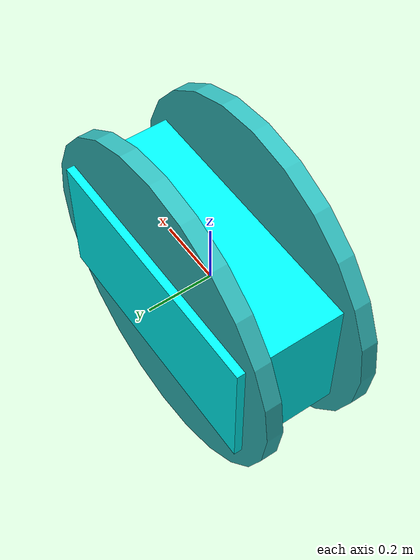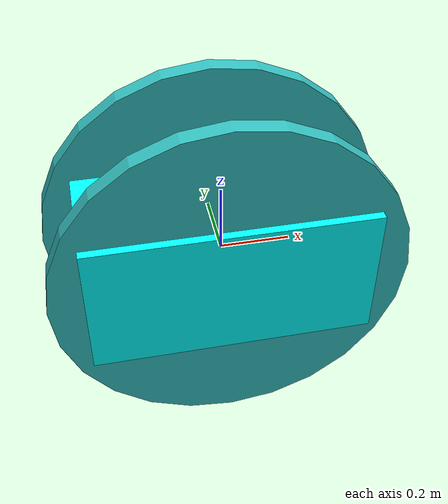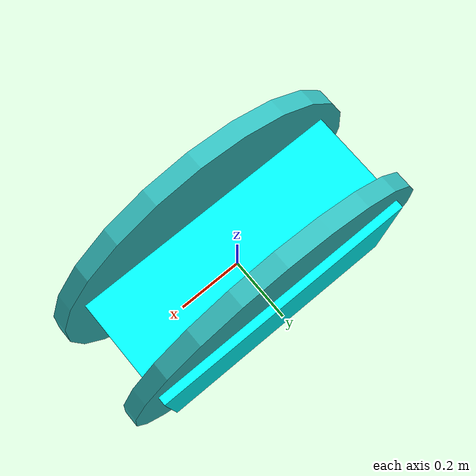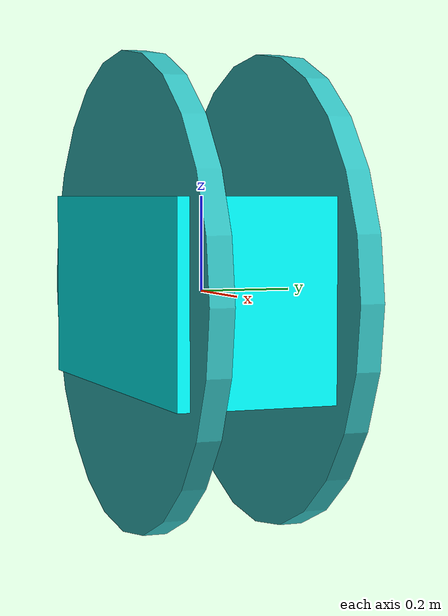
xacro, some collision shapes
<?xml version='1.0'?>

<robot name="my_robot" xmlns:xacro="http://www.ros.org/wiki/xacro">
  <xacro:include filename="$(find my_robot)/urdf/my_robot.gazebo"/>
  <link name="robot_footprint"></link>

  <joint name="robot_footprint_joint" type="fixed">
    <origin xyz="0 0 0" rpy="0 0 0" />
    <parent link="robot_footprint"/>
    <child link="chassis" />
  </joint>

  <link name='chassis'>
    <pose>0 0 0.1 0 0 0</pose>

    <inertial>
      <mass value="15.0"/>
      <origin xyz="0.0 0 0" rpy=" 0 0 0"/>
      <inertia
          ixx="0.1" ixy="0" ixz="0"
          iyy="0.1" iyz="0"
          izz="0.1"
      />
    </inertial>

    <collision name='collision'>
      <origin xyz="0 0 0" rpy=" 0 0 0"/>
      <geometry>
        <box size=".8 .4 .4"/>
      </geometry>
    </collision>

    <visual name='chassis_visual'>
      <origin xyz="0 0 0" rpy=" 0 0 0"/>
      <geometry>
        <box size=".8 .4 .4"/>
      </geometry>
      <material name="Cyan">
      	<color rgba="0 1.0 1.0 1.0"/>
      </material>
    </visual>

    <collision name='back_caster_collision'>
      <origin xyz="-0.15 0 -0.05" rpy=" 0 0 0"/>
      <geometry>
        <sphere radius="0.0499"/>
      </geometry>
    </collision>

    <visual name='back_caster_visual'>
      <origin xyz="-0.15 0 -0.05" rpy=" 0 0 0"/>
      <geometry>
        <sphere radius="0.05"/>
      </geometry>
    </visual>

    <collision name='front_caster_collision'>
      <origin xyz="0.15 0 -0.05" rpy=" 0 0 0"/>
      <geometry>
        <sphere radius="0.0499"/>
      </geometry>
    </collision>

    <visual name='front_caster_visual'>
      <origin xyz="0.15 0 -0.05" rpy=" 0 0 0"/>
      <geometry>
        <sphere radius="0.05"/>
      </geometry>
    </visual>

  </link>

  <link name="LEFT_wheel">
	<inertial>
		<mass value="5"/>
		<origin xyz="0 0 0" rpy="0 1.5707 1.5707"/>
		<inertia ixx="0.1" ixy="0" ixz="0" iyy="0.1" iyz="0" izz="0.1"/>
	</inertial>

	<collision name="LEFT_wheel_collision">
		<origin xyz="0 0 0" rpy="0 1.5707 1.5707"/>
		<geometry>
			<cylinder radius="0.5" length="0.05"/>
		</geometry>
	</collision>

	<visual name="LEFT_wheel_visual">
		<origin xyz="0 0 0" rpy="0 1.5707 1.5707"/>
		<geometry>
			<cylinder radius="0.5" length="0.05"/>
		</geometry>
	</visual>
  </link>

  <link name="RIGHT_wheel">
	<inertial>
		<mass value="5"/>
		<origin xyz="0 0 0" rpy="0 1.5707 1.5707"/>
		<inertia ixx="0.1" ixy="0" ixz="0" iyy="0.1" iyz="0" izz="0.1"/>
	</inertial>

	<collision name="RIGHT_wheel_collision">
		<origin xyz="0 0 0" rpy="0 1.5707 1.5707"/>
		<geometry>
			<cylinder radius="0.5" length="0.05"/>
		</geometry>
	</collision>

	<visual name="RIGHT_wheel_visual">
		<origin xyz="0 0 0" rpy="0 1.5707 1.5707"/>
		<geometry>
			<cylinder radius="0.5" length="0.05"/>
		</geometry>
	</visual>
  </link>

  <joint type="continuous" name="LEFT_wheel_hinge">
	<origin xyz="0 0.15 0" rpy="0 0 0"/>
	<child link="LEFT_wheel"/>
	<parent link="chassis"/>
	<axis xyz="0 1 0" rpy="0 0 0"/>
	<limit effort="10000" velocity="10000"/>
	<dynamics damping="1.0" friction="1.0"/>
  </joint>

  <joint type="continuous" name="RIGHT_wheel_hinge">
	<origin xyz="0 -0.15 0" rpy="0 0 0"/>
	<child link="RIGHT_wheel"/>
	<parent link="chassis"/>
	<axis xyz="0 1 0" rpy="0 0 0"/>
	<limit effort="10000" velocity="10000"/>
	<dynamics damping="1.0" friction="1.0"/>
  </joint>

  <link name="camera">
	<collision>
		<origin xyz="0 0 0" rpy="0 0 0"/>
		<geometry>
			<box size="0.05 0.05 0.05"/>
		</geometry>
	</collision>

	<visual>
		<origin xyz="0 0 0" rpy="0 0 0"/>
		<geometry>
			<box size="0.05 0.05 0.05"/>
		</geometry>
	</visual>

	<inertial>
		<mass value="0.1"/>
		<origin xyz="0 0 0" rpy="0 0 0"/>
		<inertia ixx="1e-6" ixy="0" ixz="0" iyy="1e-6" iyz="0" izz="1e-6"/>
		<box_inertia m="0.1" x="0.05" y="0.05" z="0.05"/>
	</inertial>
  </link>

  <joint type="fixed" name="camera_joint">
	<origin xyz="0.2 0 0" rpy="0 0 0"/>
	<axis xyz="0 1 0"/>
	<child link="camera"/>
	<parent link="chassis"/>
  </joint>

  <link name="hokuyo">
	<collision>
		<origin xyz="0 0 0" rpy="0 0 0"/>
		<geometry>
			<box size="0.1 0.1 0.1"/>
		</geometry>
	</collision>

	<visual>
		<origin xyz="0 0 0" rpy="0 0 0"/>
		<geometry>
			<mesh filename="package://my_robot/meshes/hokuyo.dae"/>
		</geometry>
	</visual>

	<inertial>
		<mass value="1e-5"/>
		<origin xyz="0 0 0" rpy="0 0 0"/>
		<inertia ixx="1e-6" ixy="0" ixz="0" iyy="1e-6" iyz="0" izz="1e-6"/>
	</inertial>
  </link>

  <joint type="fixed" name="hokuyo_joint">
	<origin xyz="0.15 0 .1" rpy="0 0 0"/>
	<axis xyz="0 1 0"/>
	<child link="hokuyo"/>
	<parent link="chassis"/>
  </joint>

  <gazebo reference="LEFT_wheel">
  	<material>Gazebo/TurquoiseGlow</material>
  </gazebo>

  <gazebo reference="RIGHT_wheel">
  	<material>Gazebo/TurquoiseGlow</material>
  </gazebo>

  <gazebo reference="chassis">
  	<material>Gazebo/Gold</material>
  </gazebo>

</robot>
